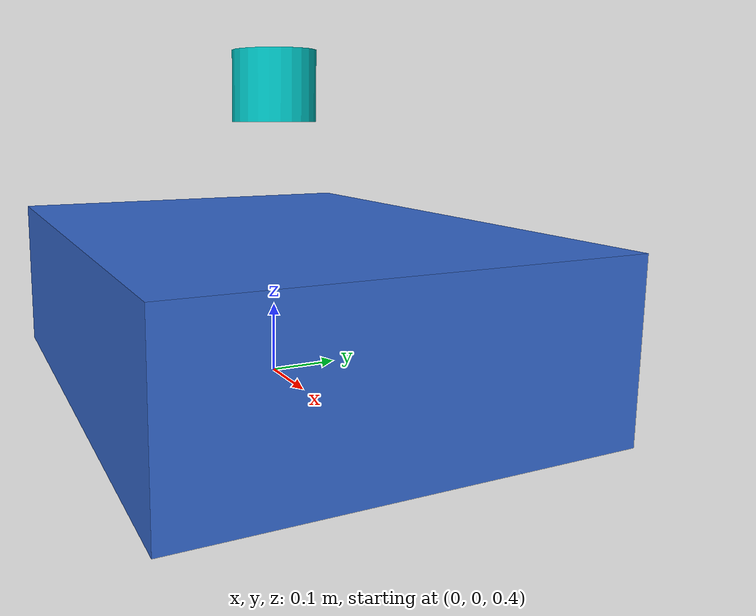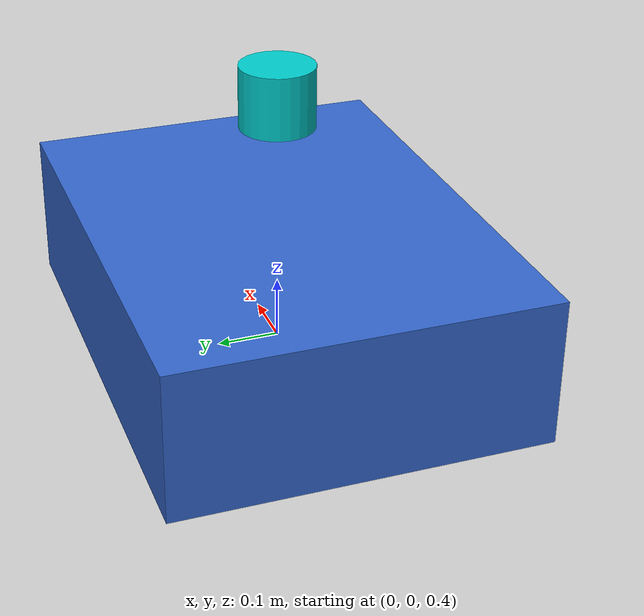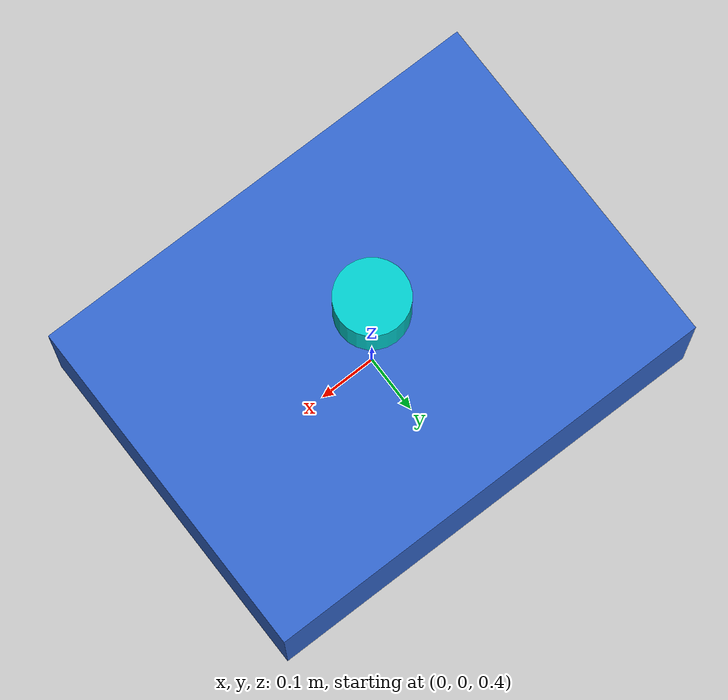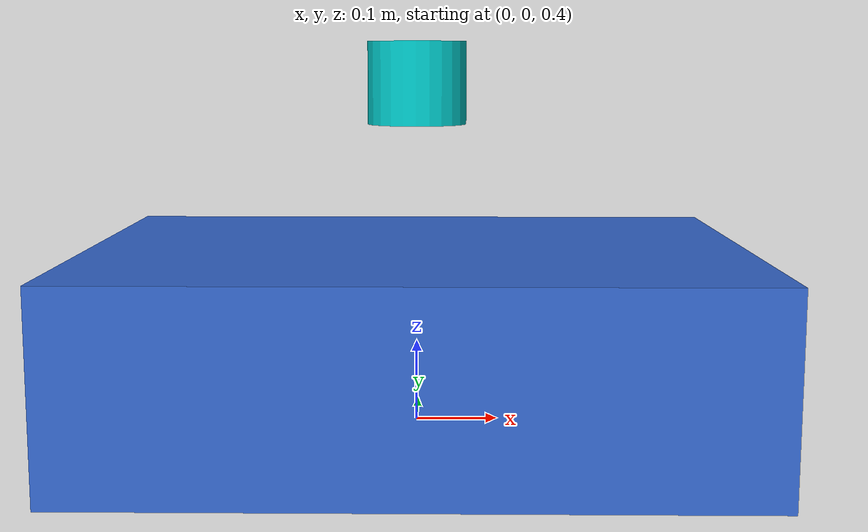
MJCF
<mujoco model="mappilot_robot">
  <compiler angle="radian" autolimits="true"/>

  <!-- ── 占位机体（等待替换为自研 MJCF）──────────────────────── -->
  <worldbody>
    <body name="base_link" pos="0 0 0.5">
      <freejoint name="root"/>

      <!-- TODO: 替换为自研底盘几何 -->
      <geom name="chassis" type="box" size="0.4 0.3 0.12"
            rgba=".2 .4 .8 1" mass="25" conaffinity="1"/>

      <!-- Livox MID-360 安装位（不要改名，bridge 依赖）-->
      <body name="lidar_link" pos="0 0 0.32">
        <geom name="lidar_housing" type="cylinder" size="0.06 0.05"
              rgba="0 .8 .8 1" mass="0.5" conaffinity="0"/>
      </body>

      <inertial pos="0 0 0" mass="25" diaginertia="0.8 1.2 1.2"/>
    </body>
  </worldbody>

</mujoco>
